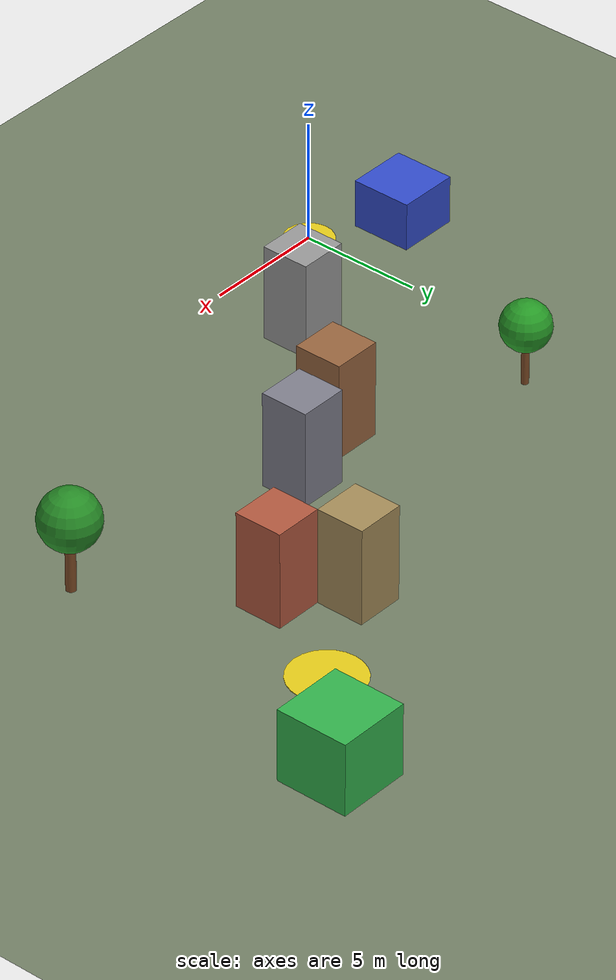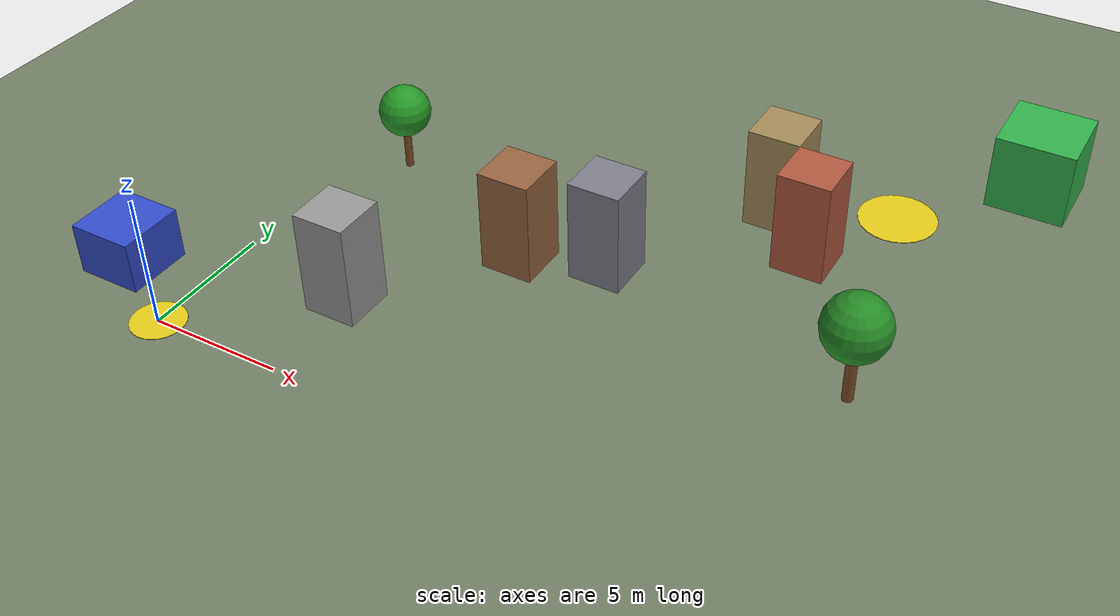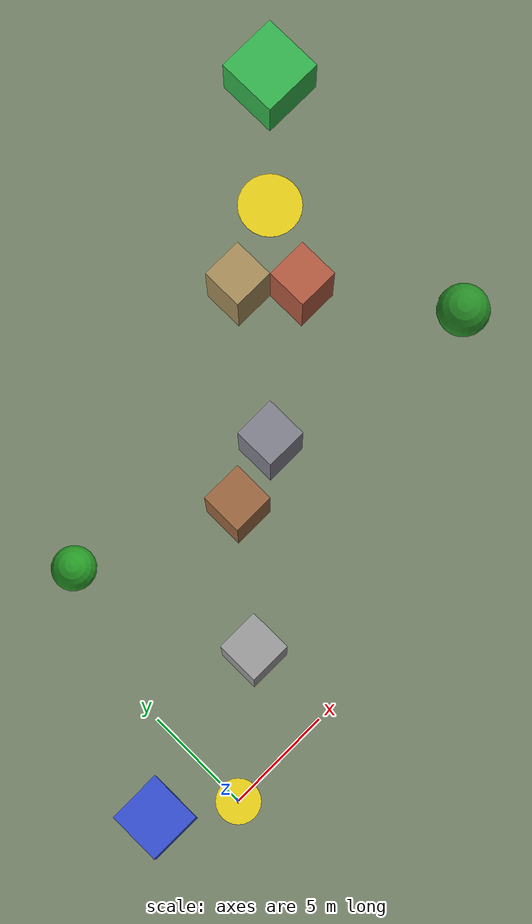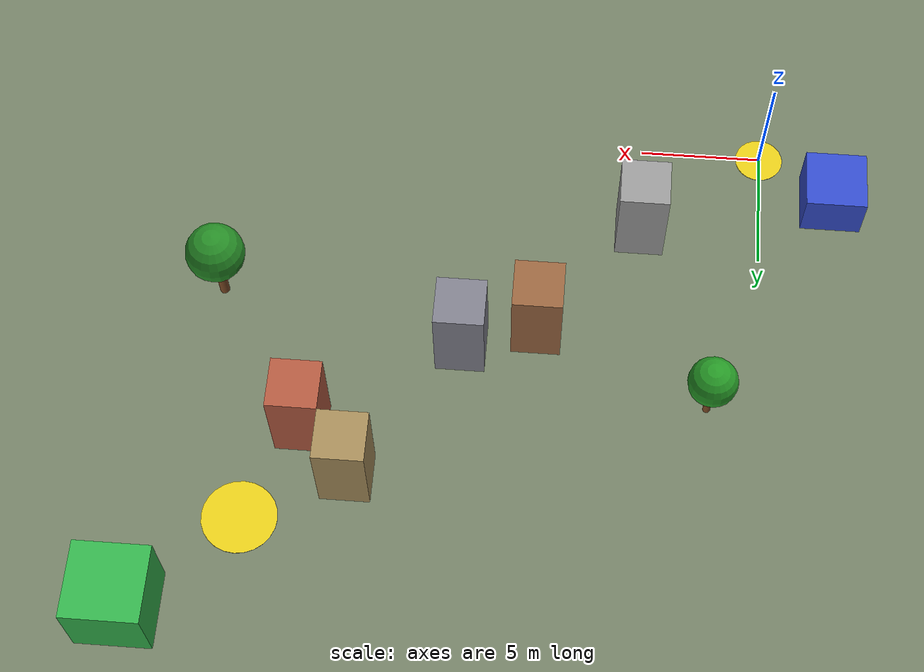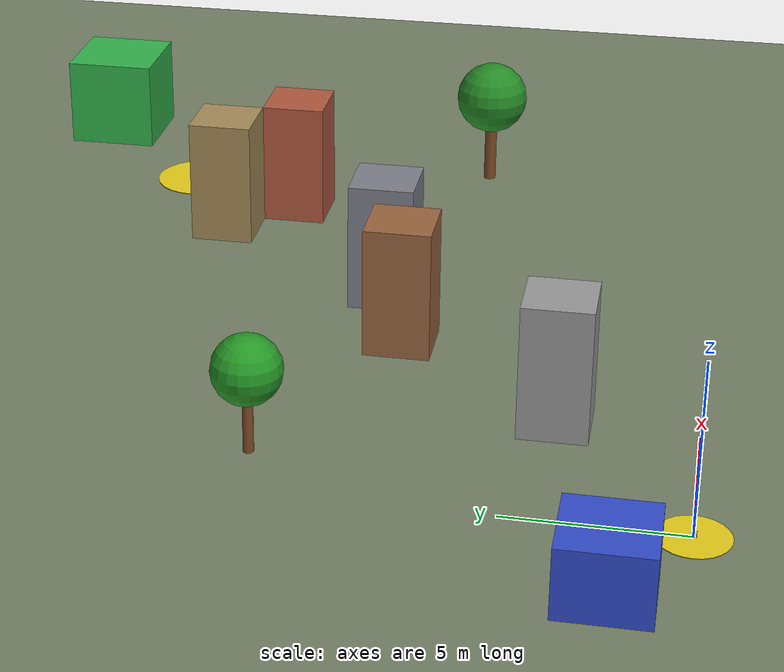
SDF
<sdf version="1.9">
 <world name="delivery_world">
  <physics name="1ms" type="ignore">
   <max_step_size>0.001</max_step_size>
   <real_time_factor>1.0</real_time_factor>
  </physics>
  <plugin filename="gz-sim-physics-system" name="gz::sim::systems::Physics"/>
  <plugin filename="gz-sim-user-commands-system" name="gz::sim::systems::UserCommands"/>
  <plugin filename="gz-sim-scene-broadcaster-system" name="gz::sim::systems::SceneBroadcaster"/>
  <plugin filename="gz-sim-sensors-system" name="gz::sim::systems::Sensors">
   <render_engine>ogre2</render_engine>
  </plugin>
  <plugin filename="gz-sim-imu-system" name="gz::sim::systems::Imu"/>
  <plugin filename="gz-sim-navsat-system" name="gz::sim::systems::NavSat"/>
  <spherical_coordinates>
   <latitude_deg>-35.363262</latitude_deg>
   <longitude_deg>149.165237</longitude_deg>
   <elevation>584</elevation>
   <heading_deg>0</heading_deg>
   <surface_model>EARTH_WGS84</surface_model>
  </spherical_coordinates>
  <light type="directional" name="sun">
   <cast_shadows>false</cast_shadows>
   <pose>0 0 10 0 0 0</pose>
   <diffuse>0.8 0.8 0.8 1</diffuse>
   <specular>0.2 0.2 0.2 1</specular>
   <direction>-0.5 0.1 -0.9</direction>
  </light>
  <scene>
   <ambient>0.6 0.6 0.6 1</ambient>
   <background>0.66 0.78 0.9 1</background>
   <shadows>false</shadows>
   <grid>true</grid>
  </scene>
  <model name="ground_plane">
   <static>true</static>
   <link name="link">
    <collision name="collision">
     <geometry><plane><normal>0 0 1</normal><size>100 100</size></plane></geometry>
    </collision>
    <visual name="visual">
     <geometry><plane><normal>0 0 1</normal><size>100 100</size></plane></geometry>
     <material><ambient>0.45 0.5 0.4 1</ambient><diffuse>0.45 0.5 0.4 1</diffuse></material>
    </visual>
   </link>
  </model>
  <model name="depot">
   <static>true</static>
   <pose>-3 2 1.0 0 0 0</pose>
   <link name="link">
    <visual name="visual">
     <geometry><box><size>2.5 2.5 2.0</size></box></geometry>
     <material><ambient>0.2 0.3 0.7 1</ambient><diffuse>0.2 0.3 0.8 1</diffuse></material>
    </visual>
    <collision name="collision"><geometry><box><size>2.5 2.5 2.0</size></box></geometry></collision>
   </link>
  </model>
  <model name="depot_pad">
   <static>true</static>
   <pose>0 0 0.01 0 0 0</pose>
   <link name="link">
    <visual name="visual">
     <geometry><cylinder><radius>1.0</radius><length>0.02</length></cylinder></geometry>
     <material><ambient>0.8 0.7 0.1 1</ambient><diffuse>0.9 0.8 0.1 1</diffuse></material>
    </visual>
   </link>
  </model>
  <model name="delivery_house">
   <static>true</static>
   <pose>24 22 1.5 0 0 0</pose>
   <link name="link">
    <visual name="visual">
     <geometry><box><size>3.0 3.0 3.0</size></box></geometry>
     <material><ambient>0.2 0.6 0.3 1</ambient><diffuse>0.2 0.7 0.3 1</diffuse></material>
    </visual>
    <collision name="collision"><geometry><box><size>3.0 3.0 3.0</size></box></geometry></collision>
   </link>
  </model>
  <model name="delivery_pad">
   <static>true</static>
   <pose>20 18 0.01 0 0 0</pose>
   <link name="link">
    <visual name="visual">
     <geometry><cylinder><radius>1.5</radius><length>0.02</length></cylinder></geometry>
     <material><ambient>0.8 0.7 0.1 1</ambient><diffuse>0.9 0.8 0.1 1</diffuse></material>
    </visual>
   </link>
  </model>
  <model name="building_1">
   <static>true</static>
   <pose>5 4 2.0 0 0 0</pose>
   <link name="link">
    <visual name="visual">
     <geometry><box><size>2.0 2.0 4.0</size></box></geometry>
     <material><ambient>0.5 0.5 0.5 1</ambient><diffuse>0.6 0.6 0.6 1</diffuse></material>
    </visual>
    <collision name="collision"><geometry><box><size>2.0 2.0 4.0</size></box></geometry></collision>
   </link>
  </model>
  <model name="building_2">
   <static>true</static>
   <pose>9 9 2.0 0 0 0</pose>
   <link name="link">
    <visual name="visual">
     <geometry><box><size>2.0 2.0 4.0</size></box></geometry>
     <material><ambient>0.5 0.35 0.2 1</ambient><diffuse>0.6 0.4 0.25 1</diffuse></material>
    </visual>
    <collision name="collision"><geometry><box><size>2.0 2.0 4.0</size></box></geometry></collision>
   </link>
  </model>
  <model name="building_3">
   <static>true</static>
   <pose>12 10 2.0 0 0 0</pose>
   <link name="link">
    <visual name="visual">
     <geometry><box><size>2.0 2.0 4.0</size></box></geometry>
     <material><ambient>0.4 0.4 0.45 1</ambient><diffuse>0.5 0.5 0.55 1</diffuse></material>
    </visual>
    <collision name="collision"><geometry><box><size>2.0 2.0 4.0</size></box></geometry></collision>
   </link>
  </model>
  <model name="building_4">
   <static>true</static>
   <pose>16 16 2.0 0 0 0</pose>
   <link name="link">
    <visual name="visual">
     <geometry><box><size>2.0 2.0 4.0</size></box></geometry>
     <material><ambient>0.55 0.45 0.3 1</ambient><diffuse>0.65 0.55 0.35 1</diffuse></material>
    </visual>
    <collision name="collision"><geometry><box><size>2.0 2.0 4.0</size></box></geometry></collision>
   </link>
  </model>
  <model name="building_5">
   <static>true</static>
   <pose>18 14 2.0 0 0 0</pose>
   <link name="link">
    <visual name="visual">
     <geometry><box><size>2.0 2.0 4.0</size></box></geometry>
     <material><ambient>0.6 0.3 0.2 1</ambient><diffuse>0.7 0.35 0.25 1</diffuse></material>
    </visual>
    <collision name="collision"><geometry><box><size>2.0 2.0 4.0</size></box></geometry></collision>
   </link>
  </model>
  <model name="tree_1">
   <static>true</static>
   <pose>2 12 0 0 0 0</pose>
   <link name="trunk">
    <visual name="trunk_visual">
     <pose>0 0 1.0 0 0 0</pose>
     <geometry><cylinder><radius>0.15</radius><length>2.0</length></cylinder></geometry>
     <material><ambient>0.4 0.25 0.1 1</ambient><diffuse>0.5 0.3 0.15 1</diffuse></material>
    </visual>
    <collision name="trunk_collision">
     <pose>0 0 1.0 0 0 0</pose>
     <geometry><cylinder><radius>0.15</radius><length>2.0</length></cylinder></geometry>
    </collision>
    <visual name="canopy_visual">
     <pose>0 0 2.5 0 0 0</pose>
     <geometry><sphere><radius>1.0</radius></sphere></geometry>
     <material><ambient>0.1 0.5 0.1 1</ambient><diffuse>0.15 0.6 0.15 1</diffuse></material>
    </visual>
   </link>
  </model>
  <model name="tree_2">
   <static>true</static>
   <pose>22 8 0 0 0 0</pose>
   <link name="trunk">
    <visual name="trunk_visual">
     <pose>0 0 1.25 0 0 0</pose>
     <geometry><cylinder><radius>0.2</radius><length>2.5</length></cylinder></geometry>
     <material><ambient>0.4 0.25 0.1 1</ambient><diffuse>0.5 0.3 0.15 1</diffuse></material>
    </visual>
    <collision name="trunk_collision">
     <pose>0 0 1.25 0 0 0</pose>
     <geometry><cylinder><radius>0.2</radius><length>2.5</length></cylinder></geometry>
    </collision>
    <visual name="canopy_visual">
     <pose>0 0 3.0 0 0 0</pose>
     <geometry><sphere><radius>1.2</radius></sphere></geometry>
     <material><ambient>0.1 0.45 0.1 1</ambient><diffuse>0.15 0.55 0.15 1</diffuse></material>
    </visual>
   </link>
  </model>
  <include><name>delivery_package</name><uri>model://delivery_package</uri><pose>0 0 0.1 0 0 0</pose></include>
 </world>
</sdf>

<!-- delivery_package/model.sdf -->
<sdf version="1.9">
  <model name="delivery_package">
    <static>false</static>

    <!-- Main package body -->
    <link name="package_link">
      <inertial>
        <mass>0.2</mass>
        <inertia>
          <ixx>0.000117</ixx>
          <ixy>0</ixy>
          <ixz>0</ixz>
          <iyy>0.000092</iyy>
          <iyz>0</iyz>
          <izz>0.000117</izz>
        </inertia>
      </inertial>

      <!-- Main cardboard box -->
      <visual name="box_visual">
        <geometry>
          <box><size>0.15 0.15 0.10</size></box>
        </geometry>
        <material>
          <ambient>0.6 0.45 0.25 1</ambient>
          <diffuse>0.7 0.5 0.3 1</diffuse>
          <specular>0.1 0.1 0.1 1</specular>
        </material>
      </visual>

      <!-- Tape stripe (top, dark brown) -->
      <visual name="tape_top">
        <pose>0 0 0.051 0 0 0</pose>
        <geometry>
          <box><size>0.15 0.03 0.002</size></box>
        </geometry>
        <material>
          <ambient>0.35 0.2 0.08 1</ambient>
          <diffuse>0.4 0.25 0.1 1</diffuse>
        </material>
      </visual>

      <!-- Tape stripe (side, dark brown) -->
      <visual name="tape_side_front">
        <pose>0 0.076 0 0 0 0</pose>
        <geometry>
          <box><size>0.03 0.002 0.10</size></box>
        </geometry>
        <material>
          <ambient>0.35 0.2 0.08 1</ambient>
          <diffuse>0.4 0.25 0.1 1</diffuse>
        </material>
      </visual>

      <!-- Label (white rectangle on side) -->
      <visual name="label">
        <pose>0 0.076 0.01 0 0 0</pose>
        <geometry>
          <box><size>0.08 0.001 0.05</size></box>
        </geometry>
        <material>
          <ambient>0.9 0.9 0.9 1</ambient>
          <diffuse>0.95 0.95 0.95 1</diffuse>
        </material>
      </visual>

      <!-- "FRAGILE" marker (red rectangle on other side) -->
      <visual name="fragile_marker">
        <pose>0 -0.076 0.01 0 0 0</pose>
        <geometry>
          <box><size>0.06 0.001 0.03</size></box>
        </geometry>
        <material>
          <ambient>0.8 0.15 0.1 1</ambient>
          <diffuse>0.9 0.2 0.1 1</diffuse>
        </material>
      </visual>

      <!-- BoilerHawk logo marker (gold rectangle on top) -->
      <visual name="logo_marker">
        <pose>0.04 0 0.051 0 0 0</pose>
        <geometry>
          <box><size>0.04 0.04 0.001</size></box>
        </geometry>
        <material>
          <ambient>0.8 0.65 0.1 1</ambient>
          <diffuse>0.9 0.75 0.15 1</diffuse>
        </material>
      </visual>

      <collision name="collision">
        <geometry>
          <box><size>0.15 0.15 0.10</size></box>
        </geometry>
        <surface>
          <friction>
            <ode>
              <mu>1.0</mu>
              <mu2>1.0</mu2>
            </ode>
          </friction>
        </surface>
      </collision>
    </link>
  </model>
</sdf>
